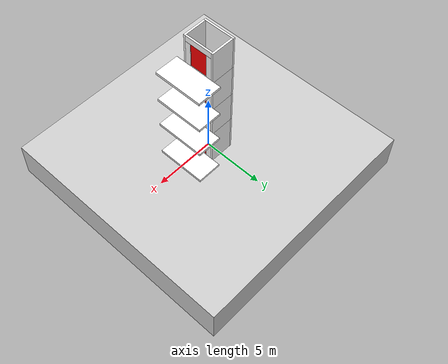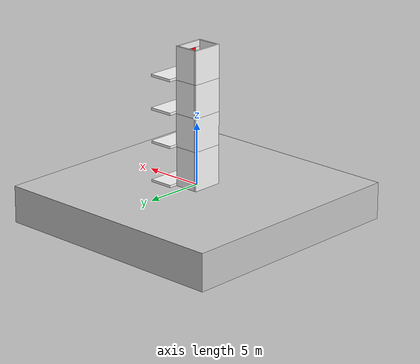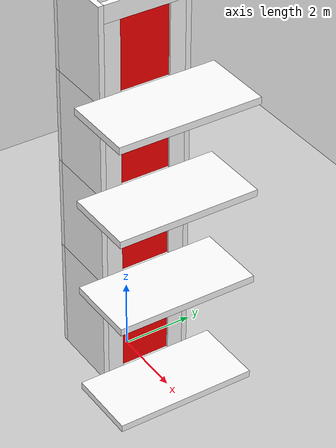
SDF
<?xml version="1.0" ?>

<sdf version="1.6">
  <world name="empty_platform">

    <physics name="4ms" type="dart">
      <max_step_size>0.004</max_step_size>
      <real_time_factor>1.0</real_time_factor>
    </physics>

    <plugin
      filename="ignition-gazebo-physics-system"
      name="ignition::gazebo::systems::Physics">
    </plugin>
    <plugin
      filename="ignition-gazebo-user-commands-system"
      name="ignition::gazebo::systems::UserCommands">
    </plugin>
    <plugin
      filename="ignition-gazebo-sensors-system"
      name="ignition::gazebo::systems::Sensors">
      <render_engine>ogre2</render_engine>
    </plugin>
    <plugin
      filename="ignition-gazebo-air-pressure-system"
      name="ignition::gazebo::systems::AirPressure">
    </plugin>
    <plugin
      filename="ignition-gazebo-altimeter-system"
      name="ignition::gazebo::systems::Altimeter">
    </plugin>
    <plugin
      filename="ignition-gazebo-imu-system"
      name="ignition::gazebo::systems::Imu">
    </plugin>
    <plugin
      filename="ignition-gazebo-magnetometer-system"
      name="ignition::gazebo::systems::Magnetometer">
    </plugin>
    <plugin
      filename="ignition-gazebo-particle-emitter2-system"
      name="ignition::gazebo::systems::ParticleEmitter2">
    </plugin>
    <plugin
      filename="ignition-gazebo-scene-broadcaster-system"
      name="ignition::gazebo::systems::SceneBroadcaster">
    </plugin>

    <scene>
      <grid>false</grid>
      <ambient>1.0 1.0 1.0</ambient>
      <background>0.8 0.8 0.8</background>
    </scene>

    <light type="directional" name="sun">
      <cast_shadows>true</cast_shadows>
      <pose>0 0 10 0 0 0</pose>
      <diffuse>0.8 0.8 0.8 1</diffuse>
      <specular>0.2 0.2 0.2 1</specular>
      <attenuation>
        <range>1000</range>
        <constant>0.9</constant>
        <linear>0.01</linear>
        <quadratic>0.001</quadratic>
      </attenuation>
      <direction>-0.5 0.1 -0.9</direction>
    </light>

    <model name="ground_platform">
      <static>true</static>
      <pose>0 0 -1.5 0 0 0</pose>
      <link name="link">
        <collision name="collision">
          <geometry>
            <box>
              <size>20 20 3</size>
            </box>
          </geometry>
        </collision>
        <visual name="visual">
          <geometry>
            <box>
              <size>20 20 3</size>
            </box>
          </geometry>
          <material>
            <ambient>0.8 0.8 0.8 1</ambient>
            <diffuse>0.8 0.8 0.8 1</diffuse>
            <specular>0.8 0.8 0.8 1</specular>
          </material>
        </visual>
      </link>
    </model>
<include>
    <uri>
    model://elevator
    </uri>
</include>
  <plugin filename="HelloWorld" name="hello_world::HelloWorld">
  </plugin>
  <gui fullscreen="0">
      <plugin filename="ReferenceAxis" name="Reference axis">
        <ignition-gui>
          <title>Reference axis</title>
          <property type="string" key="state">docked_collapsed</property>
        </ignition-gui>
        <fsk>tethys</fsk>
      </plugin>
  </gui>
  </world>
</sdf>

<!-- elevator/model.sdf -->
<sdf version="1.6">
  <model name="elevator">
    <pose>0 0 0.2 0 0 0</pose>
    <!-- ========================= START OF WALLS ========================== -->
    <link name="structure">
      <kinematic>true</kinematic>
      <pose>0.0 0.0 0.0 0 0 0</pose>
      <inertial>
        <mass>1000</mass>
        <inertia>
          <ixx>10974.166666666666</ixx>
          <ixy>0</ixy>
          <ixz>0</ixz>
          <iyy>10854.166666666666</iyy>
          <iyz>0</iyz>
          <izz>546.6666666666667</izz>
        </inertia>
        <pose>0 0 3.2 0 0 0</pose>
      </inertial>
      <visual name="wall_front_bottom_visual_0">
        <pose>0.875 0.0 -0.1 0 0 0</pose>
        <geometry>
          <box>
            <size>0.15 2.3 0.2</size>
          </box>
        </geometry>
        <material>
          <ambient>1.0 1.0 1.0 1</ambient>
          <diffuse>1.0 1.0 1.0 1</diffuse>
          <specular>0.1 0.1 0.1 1</specular>
        </material>
      </visual>
      <collision name="wall_front_bottom_collision_0">
        <pose>0.875 0.0 -0.1 0 0 0</pose>
        <geometry>
          <box>
            <size>0.15 2.3 0.2</size>
          </box>
        </geometry>
      </collision>
      <visual name="wall_front_top_visual_0">
        <pose>0.875 0.0 2.5 0 0 0</pose>
        <geometry>
          <box>
            <size>0.15 2.3 1.0</size>
          </box>
        </geometry>
        <material>
          <ambient>1.0 1.0 1.0 1</ambient>
          <diffuse>1.0 1.0 1.0 1</diffuse>
          <specular>0.1 0.1 0.1 1</specular>
        </material>
      </visual>
      <collision name="wall_front_top_collision_0">
        <pose>0.875 0.0 2.5 0 0 0</pose>
        <geometry>
          <box>
            <size>0.15 2.3 1.0</size>
          </box>
        </geometry>
      </collision>
      <visual name="wall_front_right_visual_0">
        <pose>0.875 -0.925 1.0 0 0 0</pose>
        <geometry>
          <box>
            <size>0.15 0.45 2.0</size>
          </box>
        </geometry>
        <material>
          <ambient>1.0 1.0 1.0 1</ambient>
          <diffuse>1.0 1.0 1.0 1</diffuse>
          <specular>0.1 0.1 0.1 1</specular>
        </material>
      </visual>
      <collision name="wall_front_right_collision_0">
        <pose>0.875 -0.925 1.0 0 0 0</pose>
        <geometry>
          <box>
            <size>0.15 0.45 2.0</size>
          </box>
        </geometry>
      </collision>
      <visual name="wall_front_left_visual_0">
        <pose>0.875 0.925 1.0 0 0 0</pose>
        <geometry>
          <box>
            <size>0.15 0.45 2.0</size>
          </box>
        </geometry>
        <material>
          <ambient>1.0 1.0 1.0 1</ambient>
          <diffuse>1.0 1.0 1.0 1</diffuse>
          <specular>0.1 0.1 0.1 1</specular>
        </material>
      </visual>
      <collision name="wall_front_left_collision_0">
        <pose>0.875 0.925 1.0 0 0 0</pose>
        <geometry>
          <box>
            <size>0.15 0.45 2.0</size>
          </box>
        </geometry>
      </collision>
      <visual name="wall_right_visual_0">
        <pose>0.0 -1.225 1.4 0 0 0</pose>
        <geometry>
          <box>
            <size>1.9 0.15 3.2</size>
          </box>
        </geometry>
        <material>
          <ambient>1.0 1.0 1.0 1</ambient>
          <diffuse>1.0 1.0 1.0 1</diffuse>
          <specular>0.1 0.1 0.1 1</specular>
        </material>
      </visual>
      <collision name="wall_right_collision_0">
        <pose>0.0 -1.225 1.4 0 0 0</pose>
        <geometry>
          <box>
            <size>1.9 0.15 3.2</size>
          </box>
        </geometry>
      </collision>
      <visual name="wall_left_visual_0">
        <pose>0.0 1.225 1.4 0 0 0</pose>
        <geometry>
          <box>
            <size>1.9 0.15 3.2</size>
          </box>
        </geometry>
        <material>
          <ambient>1.0 1.0 1.0 1</ambient>
          <diffuse>1.0 1.0 1.0 1</diffuse>
          <specular>0.1 0.1 0.1 1</specular>
        </material>
      </visual>
      <collision name="wall_left_collision_0">
        <pose>0.0 1.225 1.4 0 0 0</pose>
        <geometry>
          <box>
            <size>1.9 0.15 3.2</size>
          </box>
        </geometry>
      </collision>
      <visual name="wall_rear_visual_0">
        <pose>-1.025 0.0 1.4 0 0 0</pose>
        <geometry>
          <box>
            <size>0.15 2.6 3.2</size>
          </box>
        </geometry>
        <material>
          <ambient>1.0 1.0 1.0 1</ambient>
          <diffuse>1.0 1.0 1.0 1</diffuse>
          <specular>0.1 0.1 0.1 1</specular>
        </material>
      </visual>
      <collision name="wall_rear_collision_0">
        <pose>-1.025 0.0 1.4 0 0 0</pose>
        <geometry>
          <box>
            <size>0.15 2.6 3.2</size>
          </box>
        </geometry>
      </collision>
      <visual name="entrance_visual_0">
        <pose>1.95 0.0 -0.1 0 0 0</pose>
        <geometry>
          <box>
            <size>2.0 4.0 0.2</size>
          </box>
        </geometry>
        <material>
          <ambient>1.0 1.0 1.0 1</ambient>
          <diffuse>1.0 1.0 1.0 1</diffuse>
          <specular>0.1 0.1 0.1 1</specular>
        </material>
      </visual>
      <collision name="entrance_collision_0">
        <pose>1.95 0.0 -0.1 0 0 0</pose>
        <geometry>
          <box>
            <size>2.0 4.0 0.2</size>
          </box>
        </geometry>
      </collision>
      <visual name="wall_front_bottom_visual_1">
        <pose>0.875 0.0 3.1 0 0 0</pose>
        <geometry>
          <box>
            <size>0.15 2.3 0.2</size>
          </box>
        </geometry>
        <material>
          <ambient>1.0 1.0 1.0 1</ambient>
          <diffuse>1.0 1.0 1.0 1</diffuse>
          <specular>0.1 0.1 0.1 1</specular>
        </material>
      </visual>
      <collision name="wall_front_bottom_collision_1">
        <pose>0.875 0.0 3.1 0 0 0</pose>
        <geometry>
          <box>
            <size>0.15 2.3 0.2</size>
          </box>
        </geometry>
      </collision>
      <visual name="wall_front_top_visual_1">
        <pose>0.875 0.0 5.45 0 0 0</pose>
        <geometry>
          <box>
            <size>0.15 2.3 0.5</size>
          </box>
        </geometry>
        <material>
          <ambient>1.0 1.0 1.0 1</ambient>
          <diffuse>1.0 1.0 1.0 1</diffuse>
          <specular>0.1 0.1 0.1 1</specular>
        </material>
      </visual>
      <collision name="wall_front_top_collision_1">
        <pose>0.875 0.0 5.45 0 0 0</pose>
        <geometry>
          <box>
            <size>0.15 2.3 0.5</size>
          </box>
        </geometry>
      </collision>
      <visual name="wall_front_right_visual_1">
        <pose>0.875 -0.925 4.2 0 0 0</pose>
        <geometry>
          <box>
            <size>0.15 0.45 2.0</size>
          </box>
        </geometry>
        <material>
          <ambient>1.0 1.0 1.0 1</ambient>
          <diffuse>1.0 1.0 1.0 1</diffuse>
          <specular>0.1 0.1 0.1 1</specular>
        </material>
      </visual>
      <collision name="wall_front_right_collision_1">
        <pose>0.875 -0.925 4.2 0 0 0</pose>
        <geometry>
          <box>
            <size>0.15 0.45 2.0</size>
          </box>
        </geometry>
      </collision>
      <visual name="wall_front_left_visual_1">
        <pose>0.875 0.925 4.2 0 0 0</pose>
        <geometry>
          <box>
            <size>0.15 0.45 2.0</size>
          </box>
        </geometry>
        <material>
          <ambient>1.0 1.0 1.0 1</ambient>
          <diffuse>1.0 1.0 1.0 1</diffuse>
          <specular>0.1 0.1 0.1 1</specular>
        </material>
      </visual>
      <collision name="wall_front_left_collision_1">
        <pose>0.875 0.925 4.2 0 0 0</pose>
        <geometry>
          <box>
            <size>0.15 0.45 2.0</size>
          </box>
        </geometry>
      </collision>
      <visual name="wall_right_visual_1">
        <pose>0.0 -1.225 4.35 0 0 0</pose>
        <geometry>
          <box>
            <size>1.9 0.15 2.7</size>
          </box>
        </geometry>
        <material>
          <ambient>1.0 1.0 1.0 1</ambient>
          <diffuse>1.0 1.0 1.0 1</diffuse>
          <specular>0.1 0.1 0.1 1</specular>
        </material>
      </visual>
      <collision name="wall_right_collision_1">
        <pose>0.0 -1.225 4.35 0 0 0</pose>
        <geometry>
          <box>
            <size>1.9 0.15 2.7</size>
          </box>
        </geometry>
      </collision>
      <visual name="wall_left_visual_1">
        <pose>0.0 1.225 4.35 0 0 0</pose>
        <geometry>
          <box>
            <size>1.9 0.15 2.7</size>
          </box>
        </geometry>
        <material>
          <ambient>1.0 1.0 1.0 1</ambient>
          <diffuse>1.0 1.0 1.0 1</diffuse>
          <specular>0.1 0.1 0.1 1</specular>
        </material>
      </visual>
      <collision name="wall_left_collision_1">
        <pose>0.0 1.225 4.35 0 0 0</pose>
        <geometry>
          <box>
            <size>1.9 0.15 2.7</size>
          </box>
        </geometry>
      </collision>
      <visual name="wall_rear_visual_1">
        <pose>-1.025 0.0 4.35 0 0 0</pose>
        <geometry>
          <box>
            <size>0.15 2.6 2.7</size>
          </box>
        </geometry>
        <material>
          <ambient>1.0 1.0 1.0 1</ambient>
          <diffuse>1.0 1.0 1.0 1</diffuse>
          <specular>0.1 0.1 0.1 1</specular>
        </material>
      </visual>
      <collision name="wall_rear_collision_1">
        <pose>-1.025 0.0 4.35 0 0 0</pose>
        <geometry>
          <box>
            <size>0.15 2.6 2.7</size>
          </box>
        </geometry>
      </collision>
      <visual name="entrance_visual_1">
        <pose>1.95 0.0 3.1 0 0 0</pose>
        <geometry>
          <box>
            <size>2.0 4.0 0.2</size>
          </box>
        </geometry>
        <material>
          <ambient>1.0 1.0 1.0 1</ambient>
          <diffuse>1.0 1.0 1.0 1</diffuse>
          <specular>0.1 0.1 0.1 1</specular>
        </material>
      </visual>
      <collision name="entrance_collision_1">
        <pose>1.95 0.0 3.1 0 0 0</pose>
        <geometry>
          <box>
            <size>2.0 4.0 0.2</size>
          </box>
        </geometry>
      </collision>
      <visual name="wall_front_bottom_visual_2">
        <pose>0.875 0.0 5.8 0 0 0</pose>
        <geometry>
          <box>
            <size>0.15 2.3 0.2</size>
          </box>
        </geometry>
        <material>
          <ambient>1.0 1.0 1.0 1</ambient>
          <diffuse>1.0 1.0 1.0 1</diffuse>
          <specular>0.1 0.1 0.1 1</specular>
        </material>
      </visual>
      <collision name="wall_front_bottom_collision_2">
        <pose>0.875 0.0 5.8 0 0 0</pose>
        <geometry>
          <box>
            <size>0.15 2.3 0.2</size>
          </box>
        </geometry>
      </collision>
      <visual name="wall_front_top_visual_2">
        <pose>0.875 0.0 8.15 0 0 0</pose>
        <geometry>
          <box>
            <size>0.15 2.3 0.5</size>
          </box>
        </geometry>
        <material>
          <ambient>1.0 1.0 1.0 1</ambient>
          <diffuse>1.0 1.0 1.0 1</diffuse>
          <specular>0.1 0.1 0.1 1</specular>
        </material>
      </visual>
      <collision name="wall_front_top_collision_2">
        <pose>0.875 0.0 8.15 0 0 0</pose>
        <geometry>
          <box>
            <size>0.15 2.3 0.5</size>
          </box>
        </geometry>
      </collision>
      <visual name="wall_front_right_visual_2">
        <pose>0.875 -0.925 6.9 0 0 0</pose>
        <geometry>
          <box>
            <size>0.15 0.45 2.0</size>
          </box>
        </geometry>
        <material>
          <ambient>1.0 1.0 1.0 1</ambient>
          <diffuse>1.0 1.0 1.0 1</diffuse>
          <specular>0.1 0.1 0.1 1</specular>
        </material>
      </visual>
      <collision name="wall_front_right_collision_2">
        <pose>0.875 -0.925 6.9 0 0 0</pose>
        <geometry>
          <box>
            <size>0.15 0.45 2.0</size>
          </box>
        </geometry>
      </collision>
      <visual name="wall_front_left_visual_2">
        <pose>0.875 0.925 6.9 0 0 0</pose>
        <geometry>
          <box>
            <size>0.15 0.45 2.0</size>
          </box>
        </geometry>
        <material>
          <ambient>1.0 1.0 1.0 1</ambient>
          <diffuse>1.0 1.0 1.0 1</diffuse>
          <specular>0.1 0.1 0.1 1</specular>
        </material>
      </visual>
      <collision name="wall_front_left_collision_2">
        <pose>0.875 0.925 6.9 0 0 0</pose>
        <geometry>
          <box>
            <size>0.15 0.45 2.0</size>
          </box>
        </geometry>
      </collision>
      <visual name="wall_right_visual_2">
        <pose>0.0 -1.225 7.05 0 0 0</pose>
        <geometry>
          <box>
            <size>1.9 0.15 2.7</size>
          </box>
        </geometry>
        <material>
          <ambient>1.0 1.0 1.0 1</ambient>
          <diffuse>1.0 1.0 1.0 1</diffuse>
          <specular>0.1 0.1 0.1 1</specular>
        </material>
      </visual>
      <collision name="wall_right_collision_2">
        <pose>0.0 -1.225 7.05 0 0 0</pose>
        <geometry>
          <box>
            <size>1.9 0.15 2.7</size>
          </box>
        </geometry>
      </collision>
      <visual name="wall_left_visual_2">
        <pose>0.0 1.225 7.05 0 0 0</pose>
        <geometry>
          <box>
            <size>1.9 0.15 2.7</size>
          </box>
        </geometry>
        <material>
          <ambient>1.0 1.0 1.0 1</ambient>
          <diffuse>1.0 1.0 1.0 1</diffuse>
          <specular>0.1 0.1 0.1 1</specular>
        </material>
      </visual>
      <collision name="wall_left_collision_2">
        <pose>0.0 1.225 7.05 0 0 0</pose>
        <geometry>
          <box>
            <size>1.9 0.15 2.7</size>
          </box>
        </geometry>
      </collision>
      <visual name="wall_rear_visual_2">
        <pose>-1.025 0.0 7.05 0 0 0</pose>
        <geometry>
          <box>
            <size>0.15 2.6 2.7</size>
          </box>
        </geometry>
        <material>
          <ambient>1.0 1.0 1.0 1</ambient>
          <diffuse>1.0 1.0 1.0 1</diffuse>
          <specular>0.1 0.1 0.1 1</specular>
        </material>
      </visual>
      <collision name="wall_rear_collision_2">
        <pose>-1.025 0.0 7.05 0 0 0</pose>
        <geometry>
          <box>
            <size>0.15 2.6 2.7</size>
          </box>
        </geometry>
      </collision>
      <visual name="entrance_visual_2">
        <pose>1.95 0.0 5.8 0 0 0</pose>
        <geometry>
          <box>
            <size>2.0 4.0 0.2</size>
          </box>
        </geometry>
        <material>
          <ambient>1.0 1.0 1.0 1</ambient>
          <diffuse>1.0 1.0 1.0 1</diffuse>
          <specular>0.1 0.1 0.1 1</specular>
        </material>
      </visual>
      <collision name="entrance_collision_2">
        <pose>1.95 0.0 5.8 0 0 0</pose>
        <geometry>
          <box>
            <size>2.0 4.0 0.2</size>
          </box>
        </geometry>
      </collision>
      <visual name="wall_front_bottom_visual_3">
        <pose>0.875 0.0 8.5 0 0 0</pose>
        <geometry>
          <box>
            <size>0.15 2.3 0.2</size>
          </box>
        </geometry>
        <material>
          <ambient>1.0 1.0 1.0 1</ambient>
          <diffuse>1.0 1.0 1.0 1</diffuse>
          <specular>0.1 0.1 0.1 1</specular>
        </material>
      </visual>
      <collision name="wall_front_bottom_collision_3">
        <pose>0.875 0.0 8.5 0 0 0</pose>
        <geometry>
          <box>
            <size>0.15 2.3 0.2</size>
          </box>
        </geometry>
      </collision>
      <visual name="wall_front_top_visual_3">
        <pose>0.875 0.0 10.85 0 0 0</pose>
        <geometry>
          <box>
            <size>0.15 2.3 0.5</size>
          </box>
        </geometry>
        <material>
          <ambient>1.0 1.0 1.0 1</ambient>
          <diffuse>1.0 1.0 1.0 1</diffuse>
          <specular>0.1 0.1 0.1 1</specular>
        </material>
      </visual>
      <collision name="wall_front_top_collision_3">
        <pose>0.875 0.0 10.85 0 0 0</pose>
        <geometry>
          <box>
            <size>0.15 2.3 0.5</size>
          </box>
        </geometry>
      </collision>
      <visual name="wall_front_right_visual_3">
        <pose>0.875 -0.925 9.6 0 0 0</pose>
        <geometry>
          <box>
            <size>0.15 0.45 2.0</size>
          </box>
        </geometry>
        <material>
          <ambient>1.0 1.0 1.0 1</ambient>
          <diffuse>1.0 1.0 1.0 1</diffuse>
          <specular>0.1 0.1 0.1 1</specular>
        </material>
      </visual>
      <collision name="wall_front_right_collision_3">
        <pose>0.875 -0.925 9.6 0 0 0</pose>
        <geometry>
          <box>
            <size>0.15 0.45 2.0</size>
          </box>
        </geometry>
      </collision>
      <visual name="wall_front_left_visual_3">
        <pose>0.875 0.925 9.6 0 0 0</pose>
        <geometry>
          <box>
            <size>0.15 0.45 2.0</size>
          </box>
        </geometry>
        <material>
          <ambient>1.0 1.0 1.0 1</ambient>
          <diffuse>1.0 1.0 1.0 1</diffuse>
          <specular>0.1 0.1 0.1 1</specular>
        </material>
      </visual>
      <collision name="wall_front_left_collision_3">
        <pose>0.875 0.925 9.6 0 0 0</pose>
        <geometry>
          <box>
            <size>0.15 0.45 2.0</size>
          </box>
        </geometry>
      </collision>
      <visual name="wall_right_visual_3">
        <pose>0.0 -1.225 9.75 0 0 0</pose>
        <geometry>
          <box>
            <size>1.9 0.15 2.7</size>
          </box>
        </geometry>
        <material>
          <ambient>1.0 1.0 1.0 1</ambient>
          <diffuse>1.0 1.0 1.0 1</diffuse>
          <specular>0.1 0.1 0.1 1</specular>
        </material>
      </visual>
      <collision name="wall_right_collision_3">
        <pose>0.0 -1.225 9.75 0 0 0</pose>
        <geometry>
          <box>
            <size>1.9 0.15 2.7</size>
          </box>
        </geometry>
      </collision>
      <visual name="wall_left_visual_3">
        <pose>0.0 1.225 9.75 0 0 0</pose>
        <geometry>
          <box>
            <size>1.9 0.15 2.7</size>
          </box>
        </geometry>
        <material>
          <ambient>1.0 1.0 1.0 1</ambient>
          <diffuse>1.0 1.0 1.0 1</diffuse>
          <specular>0.1 0.1 0.1 1</specular>
        </material>
      </visual>
      <collision name="wall_left_collision_3">
        <pose>0.0 1.225 9.75 0 0 0</pose>
        <geometry>
          <box>
            <size>1.9 0.15 2.7</size>
          </box>
        </geometry>
      </collision>
      <visual name="wall_rear_visual_3">
        <pose>-1.025 0.0 9.75 0 0 0</pose>
        <geometry>
          <box>
            <size>0.15 2.6 2.7</size>
          </box>
        </geometry>
        <material>
          <ambient>1.0 1.0 1.0 1</ambient>
          <diffuse>1.0 1.0 1.0 1</diffuse>
          <specular>0.1 0.1 0.1 1</specular>
        </material>
      </visual>
      <collision name="wall_rear_collision_3">
        <pose>-1.025 0.0 9.75 0 0 0</pose>
        <geometry>
          <box>
            <size>0.15 2.6 2.7</size>
          </box>
        </geometry>
      </collision>
      <visual name="entrance_visual_3">
        <pose>1.95 0.0 8.5 0 0 0</pose>
        <geometry>
          <box>
            <size>2.0 4.0 0.2</size>
          </box>
        </geometry>
        <material>
          <ambient>1.0 1.0 1.0 1</ambient>
          <diffuse>1.0 1.0 1.0 1</diffuse>
          <specular>0.1 0.1 0.1 1</specular>
        </material>
      </visual>
      <collision name="entrance_collision_3">
        <pose>1.95 0.0 8.5 0 0 0</pose>
        <geometry>
          <box>
            <size>2.0 4.0 0.2</size>
          </box>
        </geometry>
      </collision>
    </link>
    <joint name="foundation" type="fixed">
      <parent>world</parent>
      <child>structure</child>
    </joint>
    <!-- ========================== END OF WALLS =========================== -->
    <!-- ========================= START OF DOORS ========================== -->
    <link name="door_panel_0">
      <pose>0.85 0.0 1.0 0 0 0</pose>
      <inertial>
        <mass>20</mass>
        <inertia>
          <ixx>9.933333333333334</ixx>
          <ixy>0</ixy>
          <ixz>0</ixz>
          <iyy>6.683333333333333</iyy>
          <iyz>0</iyz>
          <izz>3.2833333333333328</izz>
        </inertia>
        <pose>0 0 0 0 0 0</pose>
      </inertial>
      <visual name="door_visual_0">
        <geometry>
          <box>
            <size>0.1 1.4 2.0</size>
          </box>
        </geometry>
        <material>
          <ambient>1.0 0.0 0.0 1</ambient>
          <diffuse>1.0 0.0 0.0 1</diffuse>
          <specular>0.1 0.1 0.1 1</specular>
        </material>
      </visual>
      <collision name="door_collision_0">
        <geometry>
          <box>
            <size>0.1 1.4 2.0</size>
          </box>
        </geometry>
      </collision>
    </link>
    <joint name="door_0" type="prismatic">
      <parent>structure</parent>
      <child>door_panel_0</child>
      <axis>
        <xyz>0 1 0</xyz>
        <limit>
          <lower>0</lower>
          <upper>1.4</upper>
          <effort>5000</effort>
          <velocity>0.1</velocity>
        </limit>
        <dynamics>
          <damping>30</damping>
        </dynamics>
      </axis>
    </joint>
    <plugin filename="gz-sim-joint-position-controller-system" name="ignition::gazebo::systems::JointPositionController">
      <joint_name>door_0</joint_name>
      <p_gain>60</p_gain>
      <i_gain>0</i_gain>
      <d_gain>40</d_gain>
      <cmd_min>-20</cmd_min>
      <cmd_max>20</cmd_max>
    </plugin>
    <link name="door_panel_1">
      <pose>0.85 0.0 4.2 0 0 0</pose>
      <inertial>
        <mass>20</mass>
        <inertia>
          <ixx>9.933333333333334</ixx>
          <ixy>0</ixy>
          <ixz>0</ixz>
          <iyy>6.683333333333333</iyy>
          <iyz>0</iyz>
          <izz>3.2833333333333328</izz>
        </inertia>
        <pose>0 0 0 0 0 0</pose>
      </inertial>
      <visual name="door_visual_1">
        <geometry>
          <box>
            <size>0.1 1.4 2.0</size>
          </box>
        </geometry>
        <material>
          <ambient>1.0 0.0 0.0 1</ambient>
          <diffuse>1.0 0.0 0.0 1</diffuse>
          <specular>0.1 0.1 0.1 1</specular>
        </material>
      </visual>
      <collision name="door_collision_1">
        <geometry>
          <box>
            <size>0.1 1.4 2.0</size>
          </box>
        </geometry>
      </collision>
    </link>
    <joint name="door_1" type="prismatic">
      <parent>structure</parent>
      <child>door_panel_1</child>
      <axis>
        <xyz>0 1 0</xyz>
        <limit>
          <lower>0</lower>
          <upper>1.4</upper>
          <effort>5000</effort>
          <velocity>0.1</velocity>
        </limit>
        <dynamics>
          <damping>30</damping>
        </dynamics>
      </axis>
    </joint>
    <plugin filename="ignition-gazebo-joint-position-controller-system" name="ignition::gazebo::systems::JointPositionController">
      <joint_name>door_1</joint_name>
      <p_gain>60</p_gain>
      <i_gain>0</i_gain>
      <d_gain>40</d_gain>
      <cmd_min>-20</cmd_min>
      <cmd_max>20</cmd_max>
    </plugin>
    <link name="door_panel_2">
      <pose>0.85 0.0 6.9 0 0 0</pose>
      <inertial>
        <mass>20</mass>
        <inertia>
          <ixx>9.933333333333334</ixx>
          <ixy>0</ixy>
          <ixz>0</ixz>
          <iyy>6.683333333333333</iyy>
          <iyz>0</iyz>
          <izz>3.2833333333333328</izz>
        </inertia>
        <pose>0 0 0 0 0 0</pose>
      </inertial>
      <visual name="door_visual_2">
        <geometry>
          <box>
            <size>0.1 1.4 2.0</size>
          </box>
        </geometry>
        <material>
          <ambient>1.0 0.0 0.0 1</ambient>
          <diffuse>1.0 0.0 0.0 1</diffuse>
          <specular>0.1 0.1 0.1 1</specular>
        </material>
      </visual>
      <collision name="door_collision_2">
        <geometry>
          <box>
            <size>0.1 1.4 2.0</size>
          </box>
        </geometry>
      </collision>
    </link>
    <joint name="door_2" type="prismatic">
      <parent>structure</parent>
      <child>door_panel_2</child>
      <axis>
        <xyz>0 1 0</xyz>
        <limit>
          <lower>0</lower>
          <upper>1.4</upper>
          <effort>5000</effort>
          <velocity>0.1</velocity>
        </limit>
        <dynamics>
          <damping>30</damping>
        </dynamics>
      </axis>
    </joint>
    <plugin filename="ignition-gazebo-joint-position-controller-system" name="ignition::gazebo::systems::JointPositionController">
      <joint_name>door_2</joint_name>
      <p_gain>60</p_gain>
      <i_gain>0</i_gain>
      <d_gain>40</d_gain>
      <cmd_min>-20</cmd_min>
      <cmd_max>20</cmd_max>
    </plugin>
    <link name="door_panel_3">
      <pose>0.85 0.0 9.6 0 0 0</pose>
      <inertial>
        <mass>20</mass>
        <inertia>
          <ixx>9.933333333333334</ixx>
          <ixy>0</ixy>
          <ixz>0</ixz>
          <iyy>6.683333333333333</iyy>
          <iyz>0</iyz>
          <izz>3.2833333333333328</izz>
        </inertia>
        <pose>0 0 0 0 0 0</pose>
      </inertial>
      <visual name="door_visual_3">
        <geometry>
          <box>
            <size>0.1 1.4 2.0</size>
          </box>
        </geometry>
        <material>
          <ambient>1.0 0.0 0.0 1</ambient>
          <diffuse>1.0 0.0 0.0 1</diffuse>
          <specular>0.1 0.1 0.1 1</specular>
        </material>
      </visual>
      <collision name="door_collision_3">
        <geometry>
          <box>
            <size>0.1 1.4 2.0</size>
          </box>
        </geometry>
      </collision>
    </link>
    <joint name="door_3" type="prismatic">
      <parent>structure</parent>
      <child>door_panel_3</child>
      <axis>
        <xyz>0 1 0</xyz>
        <limit>
          <lower>0</lower>
          <upper>1.4</upper>
          <effort>5000</effort>
          <velocity>0.1</velocity>
        </limit>
        <dynamics>
          <damping>30</damping>
        </dynamics>
      </axis>
    </joint>
    <plugin filename="ignition-gazebo-joint-position-controller-system" name="ignition::gazebo::systems::JointPositionController">
      <joint_name>door_3</joint_name>
      <p_gain>60</p_gain>
      <i_gain>0</i_gain>
      <d_gain>40</d_gain>
      <cmd_min>-20</cmd_min>
      <cmd_max>20</cmd_max>
    </plugin>
    <!-- ========================== END OF DOORS =========================== -->
    <!-- ========================= START OF CABIN ========================== -->
    <link name="cabin">
      <pose>0.0 0.0 0.0 0 0 0</pose>
      <inertial>
        <mass>200</mass>
        <inertia>
          <ixx>147.33333333333334</ixx>
          <ixy>0</ixy>
          <ixz>0</ixz>
          <iyy>123.33333333333336</iyy>
          <iyz>0</iyz>
          <izz>109.33333333333333</izz>
        </inertia>
        <pose>0 0 1.1 0 0 0</pose>
      </inertial>
      <light type="spot" name="spot_0">
        <pose>0 -0.5 2.09 0 0 0</pose>
        <diffuse>1 1 1 1</diffuse>
        <specular>.2 .2 .2 1</specular>
        <attenuation>
          <range>2.2</range>
          <linear>0.2</linear>
          <constant>0.05</constant>
          <quadratic>0.01</quadratic>
        </attenuation>
        <direction>0 0 1</direction>
        <spot>
          <inner_angle>0.1</inner_angle>
          <outer_angle>1.0</outer_angle>
          <falloff>0.8</falloff>
        </spot>
        <cast_shadows>true</cast_shadows>
      </light>
      <light type="spot" name="spot_1">
        <pose>0 0.5 2.09 0 0 0</pose>
        <diffuse>1 1 1 1</diffuse>
        <specular>.2 .2 .2 1</specular>
        <attenuation>
          <range>2.2</range>
          <linear>0.2</linear>
          <constant>0.05</constant>
          <quadratic>0.01</quadratic>
        </attenuation>
        <direction>0 0 1</direction>
        <spot>
          <inner_angle>0.1</inner_angle>
          <outer_angle>1.0</outer_angle>
          <falloff>0.8</falloff>
        </spot>
        <cast_shadows>true</cast_shadows>
      </light>
      <visual name="cabin_bottom_visual">
        <pose>0 0 -0.05 0 0 0</pose>
        <geometry>
          <box>
            <size>1.6 2.0 0.1</size>
          </box>
        </geometry>
        <material>
          <ambient>0.175 0.175 0.175 1</ambient>
          <diffuse>0.175 0.175 0.175 1</diffuse>
          <specular>0.1 0.1 0.1 1</specular>
        </material>
      </visual>
      <collision name="cabin_bottom_collision">
        <pose>0 0 -0.05 0 0 0</pose>
        <geometry>
          <box>
            <size>1.6 2.0 0.1</size>
          </box>
        </geometry>
      </collision>
      <visual name="cabin_top_visual">
        <pose>0 0 2.25 0 0 0</pose>
        <geometry>
          <box>
            <size>1.6 2.0 0.1</size>
          </box>
        </geometry>
        <material>
          <ambient>0.175 0.175 0.175 1</ambient>
          <diffuse>0.175 0.175 0.175 1</diffuse>
          <specular>0.1 0.1 0.1 1</specular>
        </material>
      </visual>
      <collision name="cabin_top_collision">
        <pose>0 0 2.25 0 0 0</pose>
        <geometry>
          <box>
            <size>1.6 2.0 0.1</size>
          </box>
        </geometry>
      </collision>
      <visual name="cabin_right_visual">
        <pose>0 -1.05 1.1 0 0 0</pose>
        <geometry>
          <box>
            <size>1.6 0.1 2.4</size>
          </box>
        </geometry>
        <material>
          <ambient>0.175 0.175 0.175 1</ambient>
          <diffuse>0.175 0.175 0.175 1</diffuse>
          <specular>0.1 0.1 0.1 1</specular>
        </material>
      </visual>
      <collision name="cabin_right_collision">
        <pose>0 -1.05 1.1 0 0 0</pose>
        <geometry>
          <box>
            <size>1.6 0.1 2.4</size>
          </box>
        </geometry>
      </collision>
      <visual name="cabin_left_visual">
        <pose>0 1.05 1.1 0 0 0</pose>
        <geometry>
          <box>
            <size>1.6 0.1 2.4</size>
          </box>
        </geometry>
        <material>
          <ambient>0.175 0.175 0.175 1</ambient>
          <diffuse>0.175 0.175 0.175 1</diffuse>
          <specular>0.1 0.1 0.1 1</specular>
        </material>
      </visual>
      <collision name="cabin_left_collision">
        <pose>0 1.05 1.1 0 0 0</pose>
        <geometry>
          <box>
            <size>1.6 0.1 2.4</size>
          </box>
        </geometry>
      </collision>
      <visual name="cabin_rear_visual">
        <pose>-0.85 0 1.1 0 0 0</pose>
        <geometry>
          <box>
            <size>0.1 2.2 2.4</size>
          </box>
        </geometry>
        <material>
          <ambient>0.175 0.175 0.175 1</ambient>
          <diffuse>0.175 0.175 0.175 1</diffuse>
          <specular>0.1 0.1 0.1 1</specular>
        </material>
      </visual>
      <collision name="cabin_rear_collision">
        <pose>-0.85 0 1.1 0 0 0</pose>
        <geometry>
          <box>
            <size>0.1 2.2 2.4</size>
          </box>
        </geometry>
      </collision>
    </link>
    <joint name="lift" type="prismatic">
      <parent>structure</parent>
      <child>cabin</child>
      <axis>
        <xyz>0 0 1</xyz>
        <limit>
          <lower>0</lower>
          <upper>8.600000000000001</upper>
          <effort>50000000</effort>
          <velocity>0.5</velocity>
        </limit>
        <dynamics>
          <damping>180000</damping>
        </dynamics>
      </axis>
    </joint>
    <plugin filename="ignition-gazebo-joint-position-controller-system" name="ignition::gazebo::systems::JointPositionController">
      <joint_name>lift</joint_name>
      <p_gain>4000000</p_gain>
      <i_gain>2000</i_gain>
      <d_gain>5000</d_gain>
      <i_min>-2000</i_min>
      <i_max>2000</i_max>
      <cmd_min>-80000</cmd_min>
      <cmd_max>120000</cmd_max>
    </plugin>
    <!-- ========================== END OF CABIN =========================== -->
    <!-- =================== START OF FLOOR REFERENCES ===================== -->
    <link name="floor_0">
      <pose>0.0 0.0 0.0 0 0 0</pose>
    </link>
    <joint name="floor_0_joint" type="fixed">
      <parent>structure</parent>
      <child>floor_0</child>
    </joint>
    <link name="floor_1">
      <pose>0.0 0.0 3.2 0 0 0</pose>
    </link>
    <joint name="floor_1_joint" type="fixed">
      <parent>structure</parent>
      <child>floor_1</child>
    </joint>
    <link name="floor_2">
      <pose>0.0 0.0 5.9 0 0 0</pose>
    </link>
    <joint name="floor_2_joint" type="fixed">
      <parent>structure</parent>
      <child>floor_2</child>
    </joint>
    <link name="floor_3">
      <pose>0.0 0.0 8.6 0 0 0</pose>
    </link>
    <joint name="floor_3_joint" type="fixed">
      <parent>structure</parent>
      <child>floor_3</child>
    </joint>
    <!-- ==================== END OF FLOOR REFERENCES ====================== -->
    <!-- ===================== START OF DOOR LIDARS ======================== -->
    <link name="door_lidar_0">
      <pose>0.875 -0.7 0.2 1.5707963267948966 0 1.5707963267948966</pose>
      <sensor name="sensor" type="gpu_lidar">
        <topic>model/elevator/door_0/lidar</topic>
        <update_rate>10</update_rate>
        <lidar>
          <scan>
            <horizontal>
              <samples>1</samples>
              <resolution>1</resolution>
              <min_angle>0</min_angle>
              <max_angle>0</max_angle>
            </horizontal>
          </scan>
          <range>
            <min>0.001</min>
            <max>1.395</max>
            <resolution>0.01</resolution>
          </range>
        </lidar>
      </sensor>
    </link>
    <joint name="door_lidar_0_joint" type="fixed">
      <parent>structure</parent>
      <child>door_lidar_0</child>
    </joint>
    <link name="door_lidar_1">
      <pose>0.875 -0.7 3.4 1.5707963267948966 0 1.5707963267948966</pose>
      <sensor name="sensor" type="gpu_lidar">
        <topic>model/elevator/door_1/lidar</topic>
        <update_rate>10</update_rate>
        <lidar>
          <scan>
            <horizontal>
              <samples>1</samples>
              <resolution>1</resolution>
              <min_angle>0</min_angle>
              <max_angle>0</max_angle>
            </horizontal>
          </scan>
          <range>
            <min>0.001</min>
            <max>1.395</max>
            <resolution>0.01</resolution>
          </range>
        </lidar>
      </sensor>
    </link>
    <joint name="door_lidar_1_joint" type="fixed">
      <parent>structure</parent>
      <child>door_lidar_1</child>
    </joint>
    <link name="door_lidar_2">
      <pose>0.875 -0.7 6.1 1.5707963267948966 0 1.5707963267948966</pose>
      <sensor name="sensor" type="gpu_lidar">
        <topic>model/elevator/door_2/lidar</topic>
        <update_rate>10</update_rate>
        <lidar>
          <scan>
            <horizontal>
              <samples>1</samples>
              <resolution>1</resolution>
              <min_angle>0</min_angle>
              <max_angle>0</max_angle>
            </horizontal>
          </scan>
          <range>
            <min>0.001</min>
            <max>1.395</max>
            <resolution>0.01</resolution>
          </range>
        </lidar>
      </sensor>
    </link>
    <joint name="door_lidar_2_joint" type="fixed">
      <parent>structure</parent>
      <child>door_lidar_2</child>
    </joint>
    <link name="door_lidar_3">
      <pose>0.875 -0.7 8.8 1.5707963267948966 0 1.5707963267948966</pose>
      <sensor name="sensor" type="gpu_lidar">
        <topic>model/elevator/door_3/lidar</topic>
        <update_rate>10</update_rate>
        <lidar>
          <scan>
            <horizontal>
              <samples>1</samples>
              <resolution>1</resolution>
              <min_angle>0</min_angle>
              <max_angle>0</max_angle>
            </horizontal>
          </scan>
          <range>
            <min>0.001</min>
            <max>1.395</max>
            <resolution>0.01</resolution>
          </range>
        </lidar>
      </sensor>
    </link>
    <joint name="door_lidar_3_joint" type="fixed">
      <parent>structure</parent>
      <child>door_lidar_3</child>
    </joint>
    <!-- ====================== END OF DOOR LIDARS ========================= -->
    <!-- ====================== START OF CONTROLLER ======================== -->
    <plugin filename="ignition-gazebo-elevator-system" name="ignition::gazebo::systems::Elevator">
    </plugin>
    <!-- ======================= END OF CONTROLLER ========================= -->
  </model>
</sdf>
